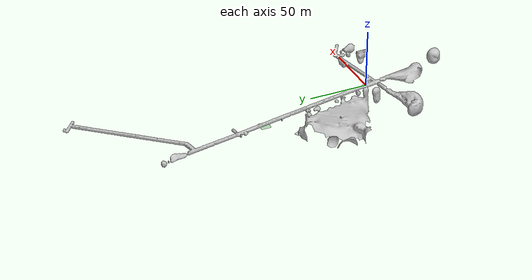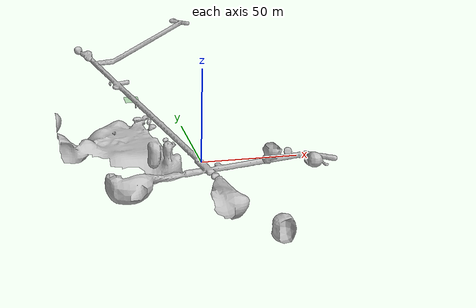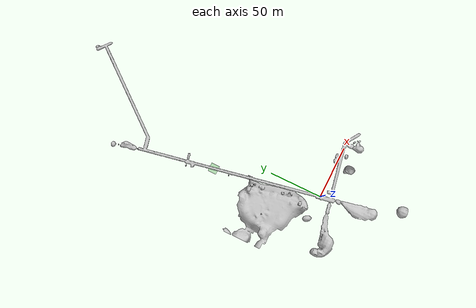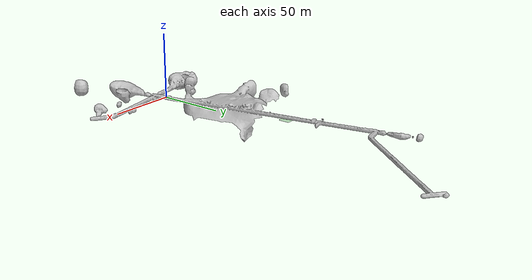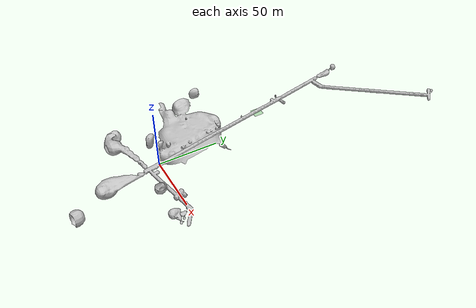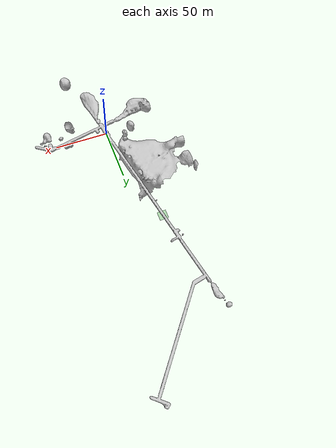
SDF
<?xml version="1.0" ?>
<sdf version="1.7">
  <world name="default">
    <light name="sun" type="directional">
      <cast_shadows>1</cast_shadows>
      <pose>0 0 10 0 0 0</pose>
      <diffuse>0.8 0.8 0.8 1</diffuse>
      <specular>0.2 0.2 0.2 1</specular>
      <attenuation>
        <range>1000</range>
        <constant>0.9</constant>
        <linear>0.01</linear>
        <quadratic>0.001</quadratic>
      </attenuation>
      <direction>-0.5 0.1 -0.9</direction>
      <spot>
        <inner_angle>0</inner_angle>
        <outer_angle>0</outer_angle>
        <falloff>0</falloff>
      </spot>
    </light>

    <plugin name="ros_interface_plugin"
            filename="librotors_gazebo_ros_interface_plugin.so"/>

    <gravity>0 0 -9.8</gravity>
    <magnetic_field>6e-06 2.3e-05 -4.2e-05</magnetic_field>
    <atmosphere type="adiabatic"/>
    <physics type="ode">
      <max_step_size>0.002</max_step_size>
      <real_time_factor>2</real_time_factor>
      <real_time_update_rate>1000</real_time_update_rate>
    </physics>
    <scene>
      <ambient>0.4 0.4 0.4 1</ambient>
      <background>0.7 0.7 0.7 1</background>
      <shadows>1</shadows>
    </scene>
    <wind/>
    <spherical_coordinates>
      <surface_model>EARTH_WGS84</surface_model>
      <latitude_deg>0</latitude_deg>
      <longitude_deg>0</longitude_deg>
      <elevation>0</elevation>
      <heading_deg>0</heading_deg>
    </spherical_coordinates>

    <!-- Adjust the pose below if the converted corridor mesh is not centered
         around the desired world origin. -->
    <include>
      <uri>model://underground_corridor</uri>
      <name>underground_corridor</name>
      <pose>0 0 0 0 0 0</pose>
    </include>

    <model name="spawn_support_pad">
      <static>true</static>
      <pose>-19.8 100.0 -1.30 0 0 0</pose>
      <link name="link">
        <collision name="collision">
          <geometry>
            <box>
              <size>8 8 0.6</size>
            </box>
          </geometry>
        </collision>
        <visual name="visual">
          <geometry>
            <box>
              <size>8 8 0.6</size>
            </box>
          </geometry>
          <material>
            <ambient>0.2 0.6 0.2 0.35</ambient>
            <diffuse>0.2 0.6 0.2 0.35</diffuse>
          </material>
        </visual>
      </link>
    </model>
  </world>
</sdf>

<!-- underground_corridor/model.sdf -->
<sdf version="1.6">
  <model name="underground_corridor">
    <static>true</static>
    <link name="base_link">
      <collision name="collision">
        <pose>0 0 0 0 0 0</pose>
        <geometry>
          <mesh>
            <!-- STL is the most reliable Gazebo import path for this workspace. -->
            <uri>meshes/underground_corridor.stl</uri>
            <scale>1.0 1.0 1.0</scale>
          </mesh>
        </geometry>
        <max_contacts>10</max_contacts>
        <surface>
          <contact>
            <ode/>
          </contact>
          <bounce/>
          <friction>
            <torsional>
              <ode/>
            </torsional>
            <ode/>
          </friction>
        </surface>
      </collision>

      <visual name="visual">
        <pose>0 0 0 0 0 0</pose>
        <geometry>
          <mesh>
            <!-- Use a double-sided visual mesh so tunnel interiors stay visible in Gazebo. -->
            <uri>meshes/underground_corridor_visual.stl</uri>
            <scale>1.0 1.0 1.0</scale>
          </mesh>
        </geometry>
        <material>
          <ambient>0.75 0.75 0.75 1.0</ambient>
          <diffuse>0.75 0.75 0.75 1.0</diffuse>
          <specular>0.05 0.05 0.05 1.0</specular>
        </material>
      </visual>
    </link>
  </model>
</sdf>
